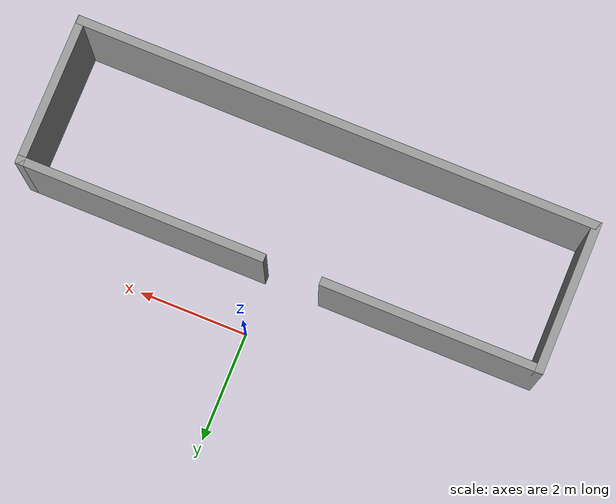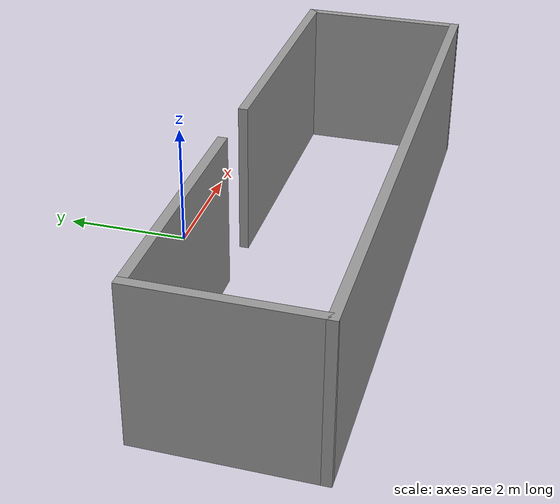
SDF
<?xml version='1.0'?>
<sdf version='1.6'>
  <model name='gglin_model'>
    <pose frame=''>-0.225 -2.34 0 0 -0 0</pose>
    <link name='Wall_2'>
      <collision name='Wall_2_Collision'>
        <geometry>
          <box>
            <size>9.5 0.15 2.5</size>
          </box>
        </geometry>
        <pose frame=''>0 0 1.25 0 -0 0</pose>
      </collision>
      <visual name='Wall_2_Visual'>
        <pose frame=''>0 0 1.25 0 -0 0</pose>
        <geometry>
          <box>
            <size>9.5 0.15 2.5</size>
          </box>
        </geometry>
        <material>
          <script>
            <uri>file://media/materials/scripts/gazebo.material</uri>
            <name>Gazebo/Grey</name>
          </script>
          <ambient>1 1 1 1</ambient>
        </material>
        <meta>
          <layer>0</layer>
        </meta>
      </visual>
      <pose frame=''>0 -1.3 0 0 -0 0</pose>
    </link>
    <link name='Wall_3'>
      <collision name='Wall_3_Collision'>
        <geometry>
          <box>
            <size>2.75 0.15 2.5</size>
          </box>
        </geometry>
        <pose frame=''>0 0 1.25 0 -0 0</pose>
      </collision>
      <visual name='Wall_3_Visual'>
        <pose frame=''>0 0 1.25 0 -0 0</pose>
        <geometry>
          <box>
            <size>2.75 0.15 2.5</size>
          </box>
        </geometry>
        <material>
          <script>
            <uri>file://media/materials/scripts/gazebo.material</uri>
            <name>Gazebo/Grey</name>
          </script>
          <ambient>1 1 1 1</ambient>
        </material>
        <meta>
          <layer>0</layer>
        </meta>
      </visual>
      <pose frame=''>4.675 0 0 0 -0 1.5708</pose>
    </link>
    <link name='Wall_4'>
      <collision name='Wall_4_Collision'>
        <geometry>
          <box>
            <size>4.5 0.15 2.5</size>
          </box>
        </geometry>
        <pose frame=''>0 0 1.25 0 -0 0</pose>
      </collision>
      <visual name='Wall_4_Visual'>
        <pose frame=''>0 0 1.25 0 -0 0</pose>
        <geometry>
          <box>
            <size>4.5 0.15 2.5</size>
          </box>
        </geometry>
        <material>
          <script>
            <uri>file://media/materials/scripts/gazebo.material</uri>
            <name>Gazebo/Grey</name>
          </script>
          <ambient>1 1 1 1</ambient>
        </material>
        <meta>
          <layer>0</layer>
        </meta>
      </visual>
      <pose frame=''>2.5 1.3 0 0 -0 3.14159</pose>
    </link>
    <link name='Wall_6'>
      <collision name='Wall_6_Collision'>
        <geometry>
          <box>
            <size>2.75 0.15 2.5</size>
          </box>
        </geometry>
        <pose frame=''>0 0 1.25 0 -0 0</pose>
      </collision>
      <visual name='Wall_6_Visual'>
        <pose frame=''>0 0 1.25 0 -0 0</pose>
        <geometry>
          <box>
            <size>2.75 0.15 2.5</size>
          </box>
        </geometry>
        <material>
          <script>
            <uri>file://media/materials/scripts/gazebo.material</uri>
            <name>Gazebo/Grey</name>
          </script>
          <ambient>1 1 1 1</ambient>
        </material>
        <meta>
          <layer>0</layer>
        </meta>
      </visual>
      <pose frame=''>-4.675 0 0 0 -0 1.5708</pose>
    </link>
    <link name='Wall_7'>
      <collision name='Wall_7_Collision'>
        <geometry>
          <box>
            <size>4 0.15 2.5</size>
          </box>
        </geometry>
        <pose frame=''>0 0 1.25 0 -0 0</pose>
      </collision>
      <visual name='Wall_7_Visual'>
        <pose frame=''>0 0 1.25 0 -0 0</pose>
        <geometry>
          <box>
            <size>4 0.15 2.5</size>
          </box>
        </geometry>
        <material>
          <script>
            <uri>file://media/materials/scripts/gazebo.material</uri>
            <name>Gazebo/Grey</name>
          </script>
          <ambient>1 1 1 1</ambient>
        </material>
        <meta>
          <layer>0</layer>
        </meta>
      </visual>
      <pose frame=''>-2.75 1.3 0 0 -0 0</pose>
    </link>
    <static>1</static>
  </model>
</sdf>
